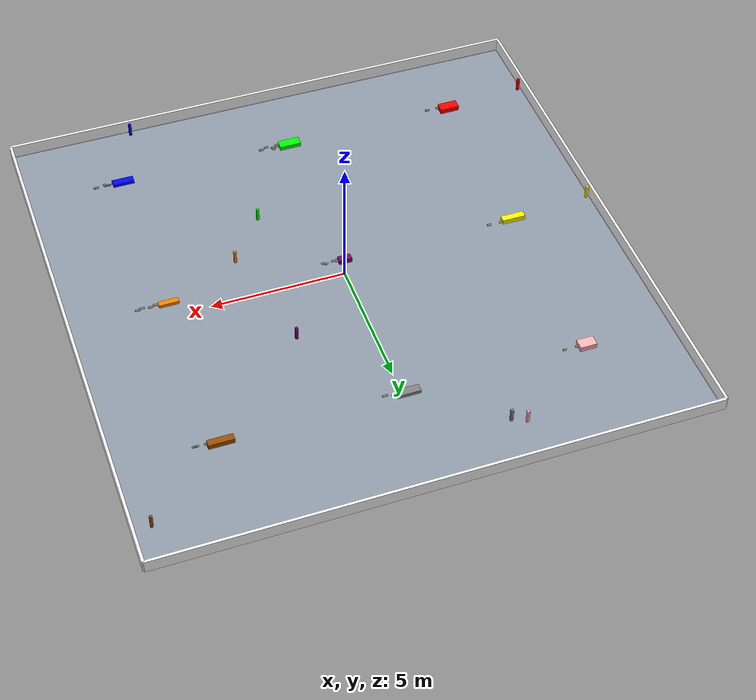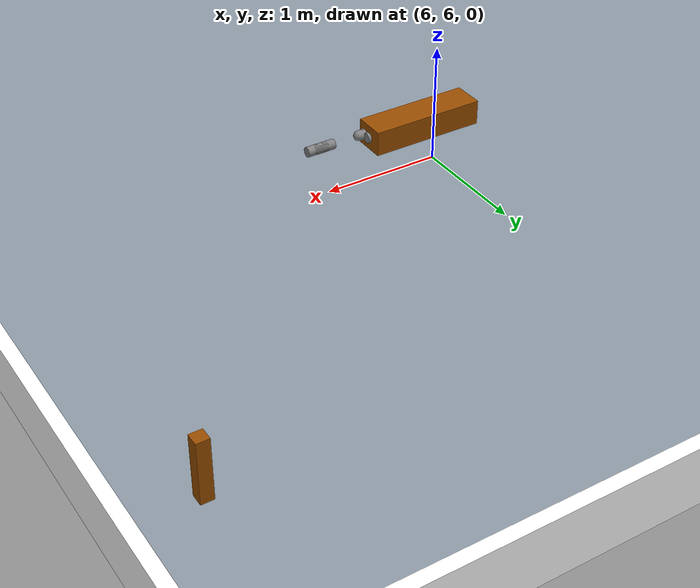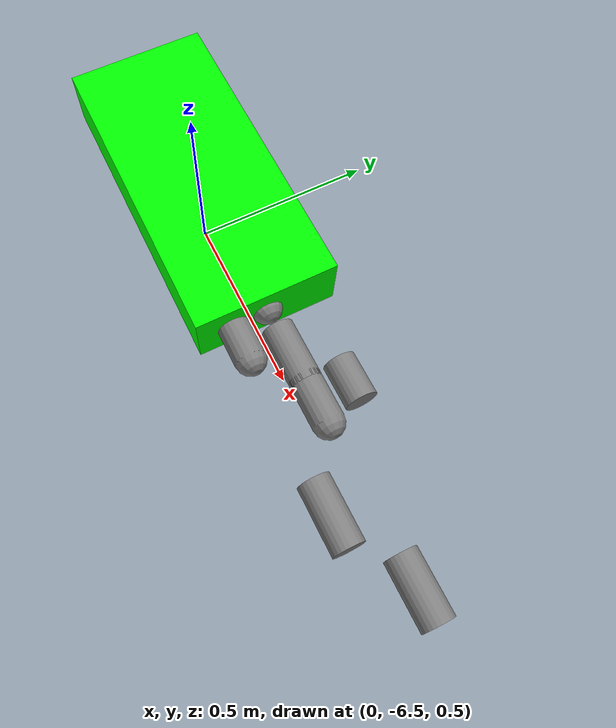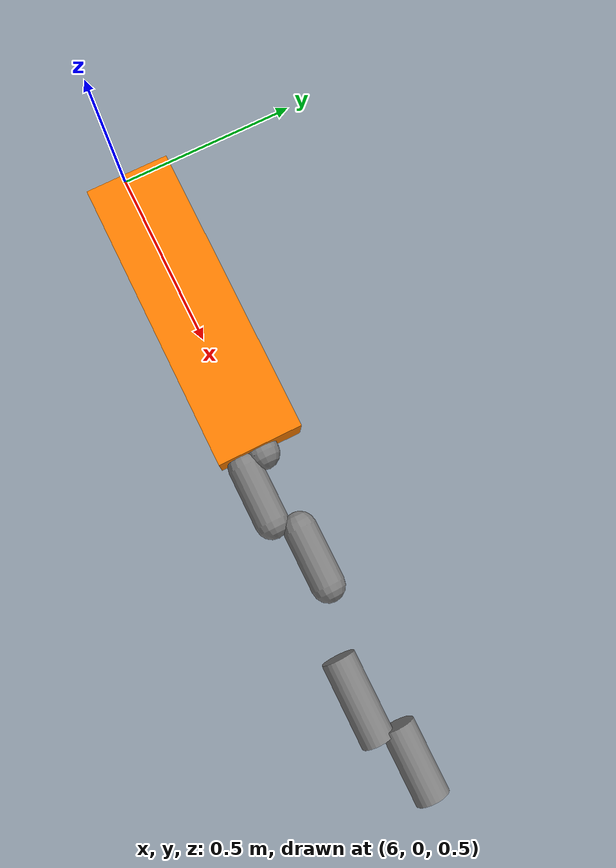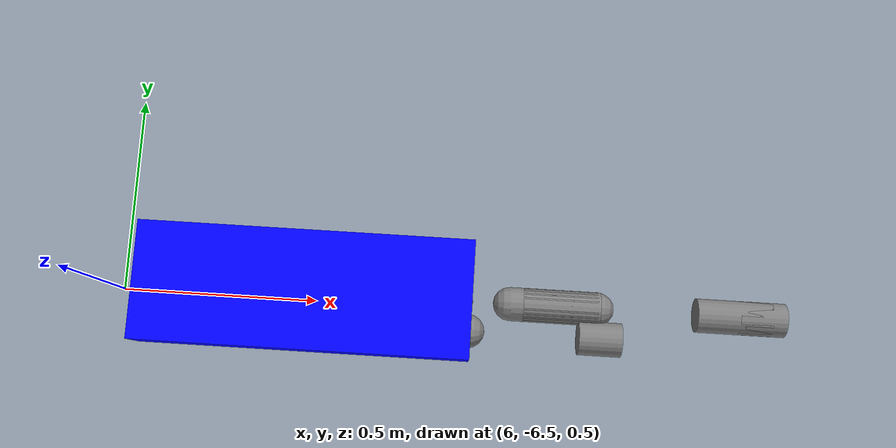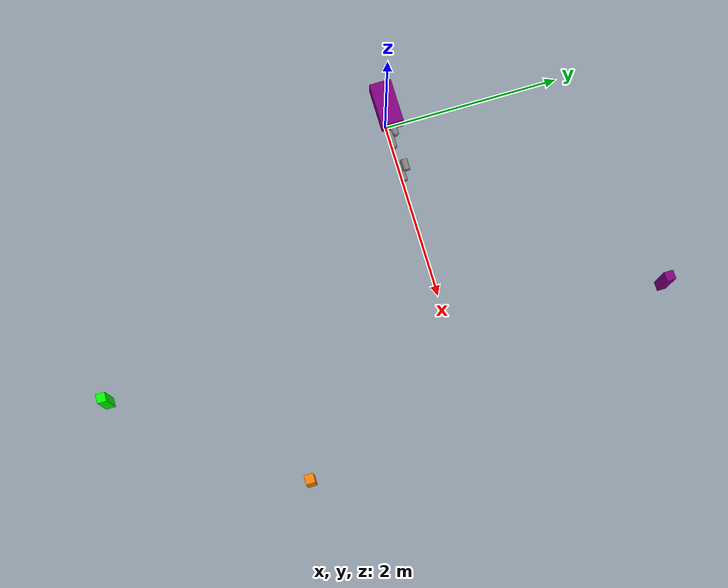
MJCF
<mujoco><option timestep="0.002" /><asset><texture name="checkered" type="2d" builtin="checker" rgb1="0.2 0.3 0.4" rgb2="0.9 0.9 0.9" width="512" height="512" /><material name="MatCheckered" texture="checkered" reflectance="0.5" /><material name="MatPlane" reflectance="0.5" shininess="1" specular="1" /><material name="red" rgba="1 0 0 1" /><material name="green" rgba="0 1 0 1" /><material name="blue" rgba="0 0 1 1" /><material name="yellow" rgba="1 1 0 1" /><material name="purple" rgba="0.5 0 0.5 1" /><material name="orange" rgba="1 0.5 0 1" /><material name="pink" rgba="1 0.7 0.7 1" /><material name="grey" rgba="0.5 0.5 0.5 1" /><material name="brown" rgba="0.6 0.3 0 1" /></asset><worldbody><geom name="floor" type="plane" size="10 10 0.1" pos="0 0 0" material="MatCheckered" /><body name="torso_0" pos="-6.5 -6.5 0.75"><geom name="torso_geom_torso_0" type="box" size="0.3686314084574217 0.18798020838017312 0.0941634634562076" pos="0 0 0" contype="1" conaffinity="1" material="red" /><joint name="torso_0_root" type="free" armature="0" damping="0" limited="false" /><site name="torso_0_site" pos="0 0 0" type="sphere" size="0.01" /><body name="leg_0_1" pos="0 -0.09399010419008656 0"><geom name="leg_0_1_upper_geom" type="capsule" fromto="0.0 0.0 0.0 0.1267791883949616 0.0 0.0" size="0.04" /><joint name="leg_0_1_hip_joint" type="ball" damping="2.0" /><body name="leg_0_1_lower" pos="0.1267791883949616 0.0 0.0"><geom name="leg_0_1_lower_geom" type="capsule" fromto="0.1267791883949616 0.0 0.0 0.3163305929933821 0.0 0.0" size="0.04" /><joint name="leg_0_1_knee_joint" type="hinge" axis="0 1 0" range="-90 90" damping="4.0" limited="true" /><body name="leg_0_1_foot" pos="0.3163305929933821 0.0 0.0"><geom name="leg_0_1_foot_geom" type="cylinder" fromto="0.3163305929933821 0.0 0.0 0.4702252551314453 0.0 0.0" size="0.04" /><joint name="leg_0_1_ankle_joint" type="ball" damping="6.0" /></body></body></body></body><geom name="flag_0" type="box" size="0.05 0.05 0.5" pos="-9.872024552930439 -7.437790176123783 0" material="red" contype="1" conaffinity="1" /><body name="torso_1" pos="0 -6.5 0.75"><geom name="torso_geom_torso_1" type="box" size="0.4058207039541576 0.18275589542413936 0.0802255788183169" pos="0 0 0" contype="1" conaffinity="2" material="green" /><joint name="torso_1_root" type="free" armature="0" damping="0" limited="false" /><site name="torso_1_site" pos="0 0 0" type="sphere" size="0.01" /><body name="leg_1_1" pos="0 0.09137794771206968 0"><geom name="leg_1_1_upper_geom" type="capsule" fromto="0.0 0.0 0.0 0.11384979679507923 0.0 0.0" size="0.04" /><joint name="leg_1_1_hip_joint" type="ball" damping="2.0" /><body name="leg_1_1_lower" pos="0.11384979679507923 0.0 0.0"><geom name="leg_1_1_lower_geom" type="capsule" fromto="0.11384979679507923 0.0 0.0 0.23965887314124676 0.0 0.0" size="0.04" /><joint name="leg_1_1_knee_joint" type="hinge" axis="0 1 0" range="-90 90" damping="4.0" limited="true" /><body name="leg_1_1_foot" pos="0.23965887314124676 0.0 0.0"><geom name="leg_1_1_foot_geom" type="cylinder" fromto="0.23965887314124676 0.0 0.0 0.34962226201581825 0.0 0.0" size="0.04" /><joint name="leg_1_1_ankle_joint" type="ball" damping="6.0" /></body></body></body><body name="leg_1_2" pos="-0.2029103519770788 0 0"><geom name="leg_1_2_upper_geom" type="capsule" fromto="0.0 0.0 0.0 0.1223014023662833 0.0 0.0" size="0.04" /><joint name="leg_1_2_hip_joint" type="ball" damping="2.0" /><body name="leg_1_2_lower" pos="0.1223014023662833 0.0 0.0"><geom name="leg_1_2_lower_geom" type="capsule" fromto="0.1223014023662833 0.0 0.0 0.26825555246109617 0.0 0.0" size="0.04" /><joint name="leg_1_2_knee_joint" type="hinge" axis="0 1 0" range="-90 90" damping="4.0" limited="true" /><body name="leg_1_2_foot" pos="0.26825555246109617 0.0 0.0"><geom name="leg_1_2_foot_geom" type="cylinder" fromto="0.26825555246109617 0.0 0.0 0.4207388754882805 0.0 0.0" size="0.04" /><joint name="leg_1_2_ankle_joint" type="ball" damping="6.0" /></body></body></body><body name="leg_1_3" pos="0.2029103519770788 0 0"><geom name="leg_1_3_upper_geom" type="capsule" fromto="0.0 0.0 0.0 0.1948001736603241 0.0 0.0" size="0.04" /><joint name="leg_1_3_hip_joint" type="ball" damping="2.0" /><body name="leg_1_3_lower" pos="0.1948001736603241 0.0 0.0"><geom name="leg_1_3_lower_geom" type="capsule" fromto="0.1948001736603241 0.0 0.0 0.31631550094978333 0.0 0.0" size="0.04" /><joint name="leg_1_3_knee_joint" type="hinge" axis="0 1 0" range="-90 90" damping="4.0" limited="true" /><body name="leg_1_3_foot" pos="0.31631550094978333 0.0 0.0"><geom name="leg_1_3_foot_geom" type="cylinder" fromto="0.31631550094978333 0.0 0.0 0.47139638646261994 0.0 0.0" size="0.04" /><joint name="leg_1_3_ankle_joint" type="ball" damping="6.0" /></body></body></body><body name="leg_1_4" pos="0 -0.09137794771206968 0"><geom name="leg_1_4_upper_geom" type="capsule" fromto="0.0 0.0 0.0 0.18556834115102555 0.0 0.0" size="0.04" /><joint name="leg_1_4_hip_joint" type="ball" damping="2.0" /><body name="leg_1_4_lower" pos="0.18556834115102555 0.0 0.0"><geom name="leg_1_4_lower_geom" type="capsule" fromto="0.18556834115102555 0.0 0.0 0.31463184072345196 0.0 0.0" size="0.04" /><joint name="leg_1_4_knee_joint" type="hinge" axis="0 1 0" range="-90 90" damping="4.0" limited="true" /><body name="leg_1_4_foot" pos="0.31463184072345196 0.0 0.0"><geom name="leg_1_4_foot_geom" type="cylinder" fromto="0.31463184072345196 0.0 0.0 0.4770140077363208 0.0 0.0" size="0.04" /><joint name="leg_1_4_ankle_joint" type="ball" damping="6.0" /></body></body></body></body><geom name="flag_1" type="box" size="0.05 0.05 0.5" pos="2.129550333121509 -3.7224083491805224 0" material="green" contype="1" conaffinity="2" /><body name="torso_2" pos="6.5 -6.5 0.75"><geom name="torso_geom_torso_2" type="box" size="0.39606022850899425 0.13911704695921495 0.06126800156183784" pos="0 0 0" contype="1" conaffinity="3" material="blue" /><joint name="torso_2_root" type="free" armature="0" damping="0" limited="false" /><site name="torso_2_site" pos="0 0 0" type="sphere" size="0.01" /><body name="leg_2_1" pos="0.19803011425449712 0 0"><geom name="leg_2_1_upper_geom" type="capsule" fromto="0.0 0.0 0.0 0.1440390326204518 0.0 0.0" size="0.04" /><joint name="leg_2_1_hip_joint" type="ball" damping="2.0" /><body name="leg_2_1_lower" pos="0.1440390326204518 0.0 0.0"><geom name="leg_2_1_lower_geom" type="capsule" fromto="0.1440390326204518 0.0 0.0 0.29072555869099426 0.0 0.0" size="0.04" /><joint name="leg_2_1_knee_joint" type="hinge" axis="0 1 0" range="-90 90" damping="4.0" limited="true" /><body name="leg_2_1_foot" pos="0.29072555869099426 0.0 0.0"><geom name="leg_2_1_foot_geom" type="cylinder" fromto="0.29072555869099426 0.0 0.0 0.46654056239979613 0.0 0.0" size="0.04" /><joint name="leg_2_1_ankle_joint" type="ball" damping="6.0" /></body></body></body><body name="leg_2_2" pos="0.19803011425449712 0 0"><geom name="leg_2_2_upper_geom" type="capsule" fromto="0.0 0.0 0.0 0.16104797196506082 0.0 0.0" size="0.04" /><joint name="leg_2_2_hip_joint" type="ball" damping="2.0" /><body name="leg_2_2_lower" pos="0.16104797196506082 0.0 0.0"><geom name="leg_2_2_lower_geom" type="capsule" fromto="0.16104797196506082 0.0 0.0 0.33167359721116274 0.0 0.0" size="0.04" /><joint name="leg_2_2_knee_joint" type="hinge" axis="0 1 0" range="-90 90" damping="4.0" limited="true" /><body name="leg_2_2_foot" pos="0.33167359721116274 0.0 0.0"><geom name="leg_2_2_foot_geom" type="cylinder" fromto="0.33167359721116274 0.0 0.0 0.44112788877400977 0.0 0.0" size="0.04" /><joint name="leg_2_2_ankle_joint" type="ball" damping="6.0" /></body></body></body><body name="leg_2_3" pos="-0.19803011425449712 0 0"><geom name="leg_2_3_upper_geom" type="capsule" fromto="0.0 0.0 0.0 0.12586475945696368 0.0 0.0" size="0.04" /><joint name="leg_2_3_hip_joint" type="ball" damping="2.0" /><body name="leg_2_3_lower" pos="0.12586475945696368 0.0 0.0"><geom name="leg_2_3_lower_geom" type="capsule" fromto="0.12586475945696368 0.0 0.0 0.294141236938309 0.0 0.0" size="0.04" /><joint name="leg_2_3_knee_joint" type="hinge" axis="0 1 0" range="-90 90" damping="4.0" limited="true" /><body name="leg_2_3_foot" pos="0.294141236938309 0.0 0.0"><geom name="leg_2_3_foot_geom" type="cylinder" fromto="0.294141236938309 0.0 0.0 0.4748545851750672 0.0 0.0" size="0.04" /><joint name="leg_2_3_ankle_joint" type="ball" damping="6.0" /></body></body></body><body name="leg_2_4" pos="0 -0.06955852347960748 0"><geom name="leg_2_4_upper_geom" type="capsule" fromto="0.0 0.0 0.0 0.12986833589324748 0.0 0.0" size="0.04" /><joint name="leg_2_4_hip_joint" type="ball" damping="2.0" /><body name="leg_2_4_lower" pos="0.12986833589324748 0.0 0.0"><geom name="leg_2_4_lower_geom" type="capsule" fromto="0.12986833589324748 0.0 0.0 0.25937765589587924 0.0 0.0" size="0.04" /><joint name="leg_2_4_knee_joint" type="hinge" axis="0 1 0" range="-90 90" damping="4.0" limited="true" /><body name="leg_2_4_foot" pos="0.25937765589587924 0.0 0.0"><geom name="leg_2_4_foot_geom" type="cylinder" fromto="0.25937765589587924 0.0 0.0 0.36047487167634434 0.0 0.0" size="0.04" /><joint name="leg_2_4_ankle_joint" type="ball" damping="6.0" /></body></body></body></body><geom name="flag_2" type="box" size="0.05 0.05 0.5" pos="5.4337822245339975 -9.833643600518858 0" material="blue" contype="1" conaffinity="3" /><body name="torso_3" pos="-6.5 0 0.75"><geom name="torso_geom_torso_3" type="box" size="0.43394952197864434 0.12617451768986515 0.09267146784115324" pos="0 0 0" contype="1" conaffinity="4" material="yellow" /><joint name="torso_3_root" type="free" armature="0" damping="0" limited="false" /><site name="torso_3_site" pos="0 0 0" type="sphere" size="0.01" /><body name="leg_3_1" pos="0 0.06308725884493258 0"><geom name="leg_3_1_upper_geom" type="capsule" fromto="0.0 0.0 0.0 0.17980911015324938 0.0 0.0" size="0.04" /><joint name="leg_3_1_hip_joint" type="ball" damping="2.0" /><body name="leg_3_1_lower" pos="0.17980911015324938 0.0 0.0"><geom name="leg_3_1_lower_geom" type="capsule" fromto="0.17980911015324938 0.0 0.0 0.35543738280709747 0.0 0.0" size="0.04" /><joint name="leg_3_1_knee_joint" type="hinge" axis="0 1 0" range="-90 90" damping="4.0" limited="true" /><body name="leg_3_1_foot" pos="0.35543738280709747 0.0 0.0"><geom name="leg_3_1_foot_geom" type="cylinder" fromto="0.35543738280709747 0.0 0.0 0.493540492840835 0.0 0.0" size="0.04" /><joint name="leg_3_1_ankle_joint" type="ball" damping="6.0" /></body></body></body></body><geom name="flag_3" type="box" size="0.05 0.05 0.5" pos="-9.892341349706745 -0.8614059246776868 0" material="yellow" contype="1" conaffinity="4" /><body name="torso_4" pos="0 0 0.75"><geom name="torso_geom_torso_4" type="box" size="0.23868216813954532 0.11844897239747185 0.09765569383705021" pos="0 0 0" contype="1" conaffinity="5" material="purple" /><joint name="torso_4_root" type="free" armature="0" damping="0" limited="false" /><site name="torso_4_site" pos="0 0 0" type="sphere" size="0.01" /><body name="leg_4_1" pos="-0.11934108406977266 0 0"><geom name="leg_4_1_upper_geom" type="capsule" fromto="0.0 0.0 0.0 0.13663269198411837 0.0 0.0" size="0.04" /><joint name="leg_4_1_hip_joint" type="ball" damping="2.0" /><body name="leg_4_1_lower" pos="0.13663269198411837 0.0 0.0"><geom name="leg_4_1_lower_geom" type="capsule" fromto="0.13663269198411837 0.0 0.0 0.3068154461040389 0.0 0.0" size="0.04" /><joint name="leg_4_1_knee_joint" type="hinge" axis="0 1 0" range="-90 90" damping="4.0" limited="true" /><body name="leg_4_1_foot" pos="0.3068154461040389 0.0 0.0"><geom name="leg_4_1_foot_geom" type="cylinder" fromto="0.3068154461040389 0.0 0.0 0.42732843576895185 0.0 0.0" size="0.04" /><joint name="leg_4_1_ankle_joint" type="ball" damping="6.0" /></body></body></body><body name="leg_4_2" pos="0 -0.05922448619873592 0"><geom name="leg_4_2_upper_geom" type="capsule" fromto="0.0 0.0 0.0 0.15620912366507425 0.0 0.0" size="0.04" /><joint name="leg_4_2_hip_joint" type="ball" damping="2.0" /><body name="leg_4_2_lower" pos="0.15620912366507425 0.0 0.0"><geom name="leg_4_2_lower_geom" type="capsule" fromto="0.15620912366507425 0.0 0.0 0.29915840464656346 0.0 0.0" size="0.04" /><joint name="leg_4_2_knee_joint" type="hinge" axis="0 1 0" range="-90 90" damping="4.0" limited="true" /><body name="leg_4_2_foot" pos="0.29915840464656346 0.0 0.0"><geom name="leg_4_2_foot_geom" type="cylinder" fromto="0.29915840464656346 0.0 0.0 0.40145061017447964 0.0 0.0" size="0.04" /><joint name="leg_4_2_ankle_joint" type="ball" damping="6.0" /></body></body></body></body><geom name="flag_4" type="box" size="0.05 0.05 0.5" pos="2.5801679383640423 2.364896067449529 0" material="purple" contype="1" conaffinity="5" /><body name="torso_5" pos="6.5 0 0.75"><geom name="torso_geom_torso_5" type="box" size="0.36049029115554687 0.10299650721130654 0.06400861501999679" pos="0 0 0" contype="1" conaffinity="6" material="orange" /><joint name="torso_5_root" type="free" armature="0" damping="0" limited="false" /><site name="torso_5_site" pos="0 0 0" type="sphere" size="0.01" /><body name="leg_5_1" pos="0.18024514557777344 0 0"><geom name="leg_5_1_upper_geom" type="capsule" fromto="0.0 0.0 0.0 0.1920047839457443 0.0 0.0" size="0.04" /><joint name="leg_5_1_hip_joint" type="ball" damping="2.0" /><body name="leg_5_1_lower" pos="0.1920047839457443 0.0 0.0"><geom name="leg_5_1_lower_geom" type="capsule" fromto="0.1920047839457443 0.0 0.0 0.3332764677652206 0.0 0.0" size="0.04" /><joint name="leg_5_1_knee_joint" type="hinge" axis="0 1 0" range="-90 90" damping="4.0" limited="true" /><body name="leg_5_1_foot" pos="0.3332764677652206 0.0 0.0"><geom name="leg_5_1_foot_geom" type="cylinder" fromto="0.3332764677652206 0.0 0.0 0.5009585837006161 0.0 0.0" size="0.04" /><joint name="leg_5_1_ankle_joint" type="ball" damping="6.0" /></body></body></body><body name="leg_5_2" pos="0 -0.05149825360565327 0"><geom name="leg_5_2_upper_geom" type="capsule" fromto="0.0 0.0 0.0 0.1912122905627416 0.0 0.0" size="0.04" /><joint name="leg_5_2_hip_joint" type="ball" damping="2.0" /><body name="leg_5_2_lower" pos="0.1912122905627416 0.0 0.0"><geom name="leg_5_2_lower_geom" type="capsule" fromto="0.1912122905627416 0.0 0.0 0.3322157205587532 0.0 0.0" size="0.04" /><joint name="leg_5_2_knee_joint" type="hinge" axis="0 1 0" range="-90 90" damping="4.0" limited="true" /><body name="leg_5_2_foot" pos="0.3322157205587532 0.0 0.0"><geom name="leg_5_2_foot_geom" type="cylinder" fromto="0.3322157205587532 0.0 0.0 0.5284334273415062 0.0 0.0" size="0.04" /><joint name="leg_5_2_ankle_joint" type="ball" damping="6.0" /></body></body></body></body><geom name="flag_5" type="box" size="0.05 0.05 0.5" pos="3.5454464221229007 -1.8763297032914104 0" material="orange" contype="1" conaffinity="6" /><body name="torso_6" pos="-6.5 6.5 0.75"><geom name="torso_geom_torso_6" type="box" size="0.30329478923319986 0.19388882349293535 0.09935334668034476" pos="0 0 0" contype="1" conaffinity="7" material="pink" /><joint name="torso_6_root" type="free" armature="0" damping="0" limited="false" /><site name="torso_6_site" pos="0 0 0" type="sphere" size="0.01" /><body name="leg_6_1" pos="-0.15164739461659993 0 0"><geom name="leg_6_1_upper_geom" type="capsule" fromto="0.0 0.0 0.0 0.17786402168274656 0.0 0.0" size="0.04" /><joint name="leg_6_1_hip_joint" type="ball" damping="2.0" /><body name="leg_6_1_lower" pos="0.17786402168274656 0.0 0.0"><geom name="leg_6_1_lower_geom" type="capsule" fromto="0.17786402168274656 0.0 0.0 0.3596506940701031 0.0 0.0" size="0.04" /><joint name="leg_6_1_knee_joint" type="hinge" axis="0 1 0" range="-90 90" damping="4.0" limited="true" /><body name="leg_6_1_foot" pos="0.3596506940701031 0.0 0.0"><geom name="leg_6_1_foot_geom" type="cylinder" fromto="0.3596506940701031 0.0 0.0 0.48331056120385135 0.0 0.0" size="0.04" /><joint name="leg_6_1_ankle_joint" type="ball" damping="6.0" /></body></body></body></body><geom name="flag_6" type="box" size="0.05 0.05 0.5" pos="-3.5623624725152103 8.40270485286422 0" material="pink" contype="1" conaffinity="7" /><body name="torso_7" pos="0 6.5 0.75"><geom name="torso_geom_torso_7" type="box" size="0.41601178730600985 0.14769683656829075 0.06648914307562892" pos="0 0 0" contype="1" conaffinity="8" material="grey" /><joint name="torso_7_root" type="free" armature="0" damping="0" limited="false" /><site name="torso_7_site" pos="0 0 0" type="sphere" size="0.01" /><body name="leg_7_1" pos="-0.20800589365300493 0 0"><geom name="leg_7_1_upper_geom" type="capsule" fromto="0.0 0.0 0.0 0.11039779431916981 0.0 0.0" size="0.04" /><joint name="leg_7_1_hip_joint" type="ball" damping="2.0" /><body name="leg_7_1_lower" pos="0.11039779431916981 0.0 0.0"><geom name="leg_7_1_lower_geom" type="capsule" fromto="0.11039779431916981 0.0 0.0 0.2852225928910833 0.0 0.0" size="0.04" /><joint name="leg_7_1_knee_joint" type="hinge" axis="0 1 0" range="-90 90" damping="4.0" limited="true" /><body name="leg_7_1_foot" pos="0.2852225928910833 0.0 0.0"><geom name="leg_7_1_foot_geom" type="cylinder" fromto="0.2852225928910833 0.0 0.0 0.3922549690795939 0.0 0.0" size="0.04" /><joint name="leg_7_1_ankle_joint" type="ball" damping="6.0" /></body></body></body><body name="leg_7_2" pos="0 -0.07384841828414537 0"><geom name="leg_7_2_upper_geom" type="capsule" fromto="0.0 0.0 0.0 0.12770199892698106 0.0 0.0" size="0.04" /><joint name="leg_7_2_hip_joint" type="ball" damping="2.0" /><body name="leg_7_2_lower" pos="0.12770199892698106 0.0 0.0"><geom name="leg_7_2_lower_geom" type="capsule" fromto="0.12770199892698106 0.0 0.0 0.2854683620967763 0.0 0.0" size="0.04" /><joint name="leg_7_2_knee_joint" type="hinge" axis="0 1 0" range="-90 90" damping="4.0" limited="true" /><body name="leg_7_2_foot" pos="0.2854683620967763 0.0 0.0"><geom name="leg_7_2_foot_geom" type="cylinder" fromto="0.2854683620967763 0.0 0.0 0.48106288628886673 0.0 0.0" size="0.04" /><joint name="leg_7_2_ankle_joint" type="ball" damping="6.0" /></body></body></body></body><geom name="flag_7" type="box" size="0.05 0.05 0.5" pos="-3.070992503875911 8.17898929154952 0" material="grey" contype="1" conaffinity="8" /><body name="torso_8" pos="6.5 6.5 0.75"><geom name="torso_geom_torso_8" type="box" size="0.4530049499005504 0.12377698243112165 0.09765105436003976" pos="0 0 0" contype="1" conaffinity="9" material="brown" /><joint name="torso_8_root" type="free" armature="0" damping="0" limited="false" /><site name="torso_8_site" pos="0 0 0" type="sphere" size="0.01" /><body name="leg_8_1" pos="0 -0.06188849121556082 0"><geom name="leg_8_1_upper_geom" type="capsule" fromto="0.0 0.0 0.0 0.1861542144066951 0.0 0.0" size="0.04" /><joint name="leg_8_1_hip_joint" type="ball" damping="2.0" /><body name="leg_8_1_lower" pos="0.1861542144066951 0.0 0.0"><geom name="leg_8_1_lower_geom" type="capsule" fromto="0.1861542144066951 0.0 0.0 0.3200828579019609 0.0 0.0" size="0.04" /><joint name="leg_8_1_knee_joint" type="hinge" axis="0 1 0" range="-90 90" damping="4.0" limited="true" /><body name="leg_8_1_foot" pos="0.3200828579019609 0.0 0.0"><geom name="leg_8_1_foot_geom" type="cylinder" fromto="0.3200828579019609 0.0 0.0 0.4482361378555679 0.0 0.0" size="0.04" /><joint name="leg_8_1_ankle_joint" type="ball" damping="6.0" /></body></body></body><body name="leg_8_2" pos="0 -0.06188849121556082 0"><geom name="leg_8_2_upper_geom" type="capsule" fromto="0.0 0.0 0.0 0.15955570754040785 0.0 0.0" size="0.04" /><joint name="leg_8_2_hip_joint" type="ball" damping="2.0" /><body name="leg_8_2_lower" pos="0.15955570754040785 0.0 0.0"><geom name="leg_8_2_lower_geom" type="capsule" fromto="0.15955570754040785 0.0 0.0 0.31385490503792235 0.0 0.0" size="0.04" /><joint name="leg_8_2_knee_joint" type="hinge" axis="0 1 0" range="-90 90" damping="4.0" limited="true" /><body name="leg_8_2_foot" pos="0.31385490503792235 0.0 0.0"><geom name="leg_8_2_foot_geom" type="cylinder" fromto="0.31385490503792235 0.0 0.0 0.4241532380654516 0.0 0.0" size="0.04" /><joint name="leg_8_2_ankle_joint" type="ball" damping="6.0" /></body></body></body><body name="leg_8_3" pos="0 -0.06188849121556082 0"><geom name="leg_8_3_upper_geom" type="capsule" fromto="0.0 0.0 0.0 0.13244878656825818 0.0 0.0" size="0.04" /><joint name="leg_8_3_hip_joint" type="ball" damping="2.0" /><body name="leg_8_3_lower" pos="0.13244878656825818 0.0 0.0"><geom name="leg_8_3_lower_geom" type="capsule" fromto="0.13244878656825818 0.0 0.0 0.2964427147327303 0.0 0.0" size="0.04" /><joint name="leg_8_3_knee_joint" type="hinge" axis="0 1 0" range="-90 90" damping="4.0" limited="true" /><body name="leg_8_3_foot" pos="0.2964427147327303 0.0 0.0"><geom name="leg_8_3_foot_geom" type="cylinder" fromto="0.2964427147327303 0.0 0.0 0.4609100063803377 0.0 0.0" size="0.04" /><joint name="leg_8_3_ankle_joint" type="ball" damping="6.0" /></body></body></body><body name="leg_8_4" pos="-0.2265024749502752 0 0"><geom name="leg_8_4_upper_geom" type="capsule" fromto="0.0 0.0 0.0 0.10247787684866003 0.0 0.0" size="0.04" /><joint name="leg_8_4_hip_joint" type="ball" damping="2.0" /><body name="leg_8_4_lower" pos="0.10247787684866003 0.0 0.0"><geom name="leg_8_4_lower_geom" type="capsule" fromto="0.10247787684866003 0.0 0.0 0.20507159494654845 0.0 0.0" size="0.04" /><joint name="leg_8_4_knee_joint" type="hinge" axis="0 1 0" range="-90 90" damping="4.0" limited="true" /><body name="leg_8_4_foot" pos="0.20507159494654845 0.0 0.0"><geom name="leg_8_4_foot_geom" type="cylinder" fromto="0.20507159494654845 0.0 0.0 0.39518275115613166 0.0 0.0" size="0.04" /><joint name="leg_8_4_ankle_joint" type="ball" damping="6.0" /></body></body></body></body><geom name="flag_8" type="box" size="0.05 0.05 0.5" pos="9.391640150191584 8.471907006377327 0" material="brown" contype="1" conaffinity="9" /><geom name="north_wall" type="box" pos="0 10.05 0.25" size="10.05 0.05 0.25" material="MatPlane" /><geom name="south_wall" type="box" pos="0 -10.05 0.25" size="10.05 0.05 0.25" material="MatPlane" /><geom name="east_wall" type="box" pos="10.05 0 0.25" size="0.05 10.05 0.25" material="MatPlane" /><geom name="west_wall" type="box" pos="-10.05 0 0.25" size="0.05 10.05 0.25" material="MatPlane" /></worldbody><actuator><motor name="leg_0_1_hip_motor" joint="leg_0_1_hip_joint" ctrllimited="true" ctrlrange="-1 1" gear="200" /><motor name="leg_0_1_ankle_joint_motor" joint="leg_0_1_ankle_joint" ctrllimited="true" ctrlrange="-1 1" gear="200" /><motor name="leg_1_1_hip_motor" joint="leg_1_1_hip_joint" ctrllimited="true" ctrlrange="-1 1" gear="200" /><motor name="leg_1_1_ankle_joint_motor" joint="leg_1_1_ankle_joint" ctrllimited="true" ctrlrange="-1 1" gear="200" /><motor name="leg_1_2_hip_motor" joint="leg_1_2_hip_joint" ctrllimited="true" ctrlrange="-1 1" gear="200" /><motor name="leg_1_2_ankle_joint_motor" joint="leg_1_2_ankle_joint" ctrllimited="true" ctrlrange="-1 1" gear="200" /><motor name="leg_1_3_hip_motor" joint="leg_1_3_hip_joint" ctrllimited="true" ctrlrange="-1 1" gear="200" /><motor name="leg_1_3_ankle_joint_motor" joint="leg_1_3_ankle_joint" ctrllimited="true" ctrlrange="-1 1" gear="200" /><motor name="leg_1_4_hip_motor" joint="leg_1_4_hip_joint" ctrllimited="true" ctrlrange="-1 1" gear="200" /><motor name="leg_1_4_ankle_joint_motor" joint="leg_1_4_ankle_joint" ctrllimited="true" ctrlrange="-1 1" gear="200" /><motor name="leg_2_1_hip_motor" joint="leg_2_1_hip_joint" ctrllimited="true" ctrlrange="-1 1" gear="200" /><motor name="leg_2_1_ankle_joint_motor" joint="leg_2_1_ankle_joint" ctrllimited="true" ctrlrange="-1 1" gear="200" /><motor name="leg_2_2_hip_motor" joint="leg_2_2_hip_joint" ctrllimited="true" ctrlrange="-1 1" gear="200" /><motor name="leg_2_2_ankle_joint_motor" joint="leg_2_2_ankle_joint" ctrllimited="true" ctrlrange="-1 1" gear="200" /><motor name="leg_2_3_hip_motor" joint="leg_2_3_hip_joint" ctrllimited="true" ctrlrange="-1 1" gear="200" /><motor name="leg_2_3_ankle_joint_motor" joint="leg_2_3_ankle_joint" ctrllimited="true" ctrlrange="-1 1" gear="200" /><motor name="leg_2_4_hip_motor" joint="leg_2_4_hip_joint" ctrllimited="true" ctrlrange="-1 1" gear="200" /><motor name="leg_2_4_ankle_joint_motor" joint="leg_2_4_ankle_joint" ctrllimited="true" ctrlrange="-1 1" gear="200" /><motor name="leg_3_1_hip_motor" joint="leg_3_1_hip_joint" ctrllimited="true" ctrlrange="-1 1" gear="200" /><motor name="leg_3_1_ankle_joint_motor" joint="leg_3_1_ankle_joint" ctrllimited="true" ctrlrange="-1 1" gear="200" /><motor name="leg_4_1_hip_motor" joint="leg_4_1_hip_joint" ctrllimited="true" ctrlrange="-1 1" gear="200" /><motor name="leg_4_1_ankle_joint_motor" joint="leg_4_1_ankle_joint" ctrllimited="true" ctrlrange="-1 1" gear="200" /><motor name="leg_4_2_hip_motor" joint="leg_4_2_hip_joint" ctrllimited="true" ctrlrange="-1 1" gear="200" /><motor name="leg_4_2_ankle_joint_motor" joint="leg_4_2_ankle_joint" ctrllimited="true" ctrlrange="-1 1" gear="200" /><motor name="leg_5_1_hip_motor" joint="leg_5_1_hip_joint" ctrllimited="true" ctrlrange="-1 1" gear="200" /><motor name="leg_5_1_ankle_joint_motor" joint="leg_5_1_ankle_joint" ctrllimited="true" ctrlrange="-1 1" gear="200" /><motor name="leg_5_2_hip_motor" joint="leg_5_2_hip_joint" ctrllimited="true" ctrlrange="-1 1" gear="200" /><motor name="leg_5_2_ankle_joint_motor" joint="leg_5_2_ankle_joint" ctrllimited="true" ctrlrange="-1 1" gear="200" /><motor name="leg_6_1_hip_motor" joint="leg_6_1_hip_joint" ctrllimited="true" ctrlrange="-1 1" gear="200" /><motor name="leg_6_1_ankle_joint_motor" joint="leg_6_1_ankle_joint" ctrllimited="true" ctrlrange="-1 1" gear="200" /><motor name="leg_7_1_hip_motor" joint="leg_7_1_hip_joint" ctrllimited="true" ctrlrange="-1 1" gear="200" /><motor name="leg_7_1_ankle_joint_motor" joint="leg_7_1_ankle_joint" ctrllimited="true" ctrlrange="-1 1" gear="200" /><motor name="leg_7_2_hip_motor" joint="leg_7_2_hip_joint" ctrllimited="true" ctrlrange="-1 1" gear="200" /><motor name="leg_7_2_ankle_joint_motor" joint="leg_7_2_ankle_joint" ctrllimited="true" ctrlrange="-1 1" gear="200" /><motor name="leg_8_1_hip_motor" joint="leg_8_1_hip_joint" ctrllimited="true" ctrlrange="-1 1" gear="200" /><motor name="leg_8_1_ankle_joint_motor" joint="leg_8_1_ankle_joint" ctrllimited="true" ctrlrange="-1 1" gear="200" /><motor name="leg_8_2_hip_motor" joint="leg_8_2_hip_joint" ctrllimited="true" ctrlrange="-1 1" gear="200" /><motor name="leg_8_2_ankle_joint_motor" joint="leg_8_2_ankle_joint" ctrllimited="true" ctrlrange="-1 1" gear="200" /><motor name="leg_8_3_hip_motor" joint="leg_8_3_hip_joint" ctrllimited="true" ctrlrange="-1 1" gear="200" /><motor name="leg_8_3_ankle_joint_motor" joint="leg_8_3_ankle_joint" ctrllimited="true" ctrlrange="-1 1" gear="200" /><motor name="leg_8_4_hip_motor" joint="leg_8_4_hip_joint" ctrllimited="true" ctrlrange="-1 1" gear="200" /><motor name="leg_8_4_ankle_joint_motor" joint="leg_8_4_ankle_joint" ctrllimited="true" ctrlrange="-1 1" gear="200" /></actuator><sensor><accelerometer name="torso_0_accel" site="torso_0_site" /><gyro name="torso_0_gyro" site="torso_0_site" /><accelerometer name="torso_1_accel" site="torso_1_site" /><gyro name="torso_1_gyro" site="torso_1_site" /><accelerometer name="torso_2_accel" site="torso_2_site" /><gyro name="torso_2_gyro" site="torso_2_site" /><accelerometer name="torso_3_accel" site="torso_3_site" /><gyro name="torso_3_gyro" site="torso_3_site" /><accelerometer name="torso_4_accel" site="torso_4_site" /><gyro name="torso_4_gyro" site="torso_4_site" /><accelerometer name="torso_5_accel" site="torso_5_site" /><gyro name="torso_5_gyro" site="torso_5_site" /><accelerometer name="torso_6_accel" site="torso_6_site" /><gyro name="torso_6_gyro" site="torso_6_site" /><accelerometer name="torso_7_accel" site="torso_7_site" /><gyro name="torso_7_gyro" site="torso_7_site" /><accelerometer name="torso_8_accel" site="torso_8_site" /><gyro name="torso_8_gyro" site="torso_8_site" /></sensor></mujoco>
